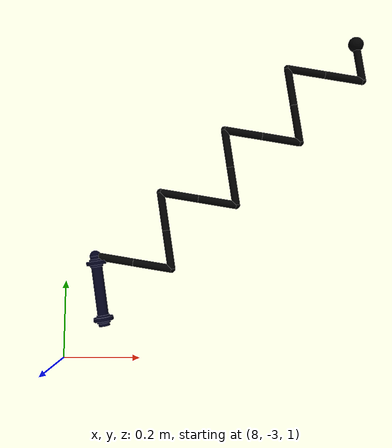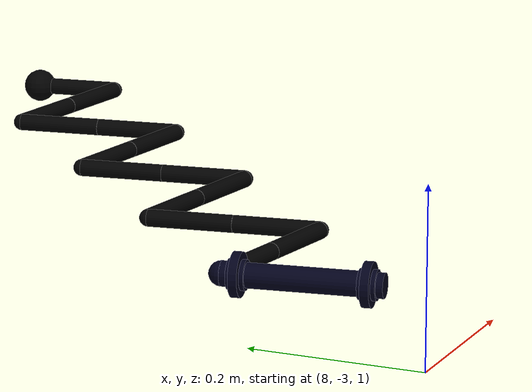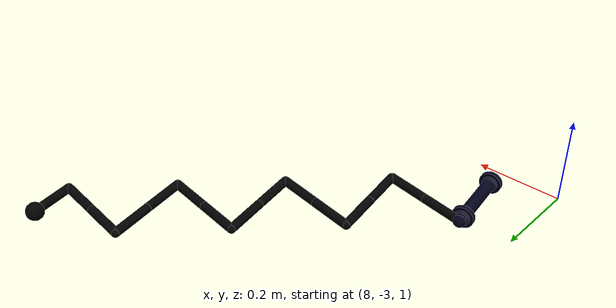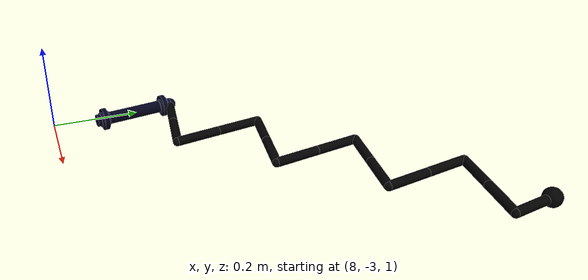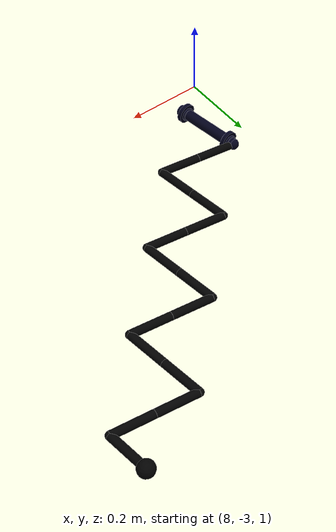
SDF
<sdf version="1.6">
 <world name="SRC_finals">
  <physics type="ode">
   <real_time_update_rate>1000.0</real_time_update_rate>
   <max_step_size>0.001</max_step_size>
   <real_time_factor>1</real_time_factor>
   <ode>
    <solver>
     <type>quick</type>
     <iters>150</iters>
     <precon_iters>0</precon_iters>
     <sor>1.400000</sor>
     <use_dynamic_moi_rescaling>1</use_dynamic_moi_rescaling>
    </solver>
    <constraints>
     <cfm>0.000000</cfm>
     <erp>0.800000</erp>
     <contact_max_correcting_vel>2000.000000</contact_max_correcting_vel>
     <contact_surface_layer>0.01000</contact_surface_layer>
    </constraints>
   </ode>
  </physics>
  <scene>
   <background>0.968627451 0.690196078 0.384313725 1.0</background>
   <grid>0</grid>
   <origin_visual>0</origin_visual>
  </scene>
  <light type="directional" name="sun">
   <pose>0 0 1000 0.7848577238240322 -0.8504814901469435 0</pose>
   <diffuse>0.8 0.8 0.8 1</diffuse>
   <specular>0.2 0.2 0.2 1</specular>
   <attenuation>
    <range>1000</range>
    <constant>0.9</constant>
    <linear>0.01</linear>
    <quadratic>0.001</quadratic>
   </attenuation>
   <direction>-0.5 0.1 -0.9</direction>
  </light>
  <plugin name="boxT2Start" filename="libBoxContainsPlugin.so">
   <entity>talos</entity>
   <namespace>task2/start</namespace>
   <pose>2.114
        -2.784846821261081e-16
        2.5
        0
        0
        -1.5707963267948968</pose>
   <size>1.524 1 5.0</size>
  </plugin>
  <model name="solar_panel_cable">
   <self_collide>true</self_collide>
   <pose>8.76796577211618
    -2.1645357042577604
    1.05
    0
    0
    -2.356194490192345</pose>
   <link name="link_0">
    <inertial><mass>0.05</mass><inertia><ixx>0.0001</ixx><iyy>0.0001</iyy><izz>0.0001</izz></inertia></inertial>
    <visual name="visual">
     <geometry><sphere><radius>0.02</radius></sphere></geometry>
     <material>
      <ambient>0 0 0 1</ambient>
      <emissive>0 0 0 1</emissive>
      <diffuse>0 0 0 1</diffuse>
      <specular>1 1 1 1</specular>
     </material>
    </visual>
   </link>
   <link name="link_1">
    <pose>0.0 0 0 0 1.5707963267948966 0.9424777960769379</pose>
    <inertial>
     <pose>0 0 0.05 0 0 0</pose>
     <mass>0.05</mass>
     <inertia><ixx>0.0001</ixx><iyy>0.0001</iyy><izz>0.0001</izz></inertia>
    </inertial>
    <collision name="cylinder">
     <pose>0 0 0.05 0 0 0</pose>
     <geometry><cylinder><length>0.1</length><radius>0.01</radius></cylinder></geometry>
     <surface>
      <contact><ode><kp>1e5</kp><kd>1</kd><max_vel>0.1</max_vel><min_depth>0.0015</min_depth></ode></contact>
      <friction><ode><mu>1.0</mu><mu2>1.0</mu2></ode></friction>
     </surface>
    </collision>
    <visual name="cylinder">
     <pose>0 0 0.05 0 0 0</pose>
     <geometry><cylinder><length>0.1</length><radius>0.01</radius></cylinder></geometry>
     <material>
      <ambient>0 0 0 1</ambient>
      <emissive>0 0 0 1</emissive>
      <diffuse>0 0 0 1</diffuse>
      <specular>1 1 1 1</specular>
     </material>
    </visual>
    <collision name="sphere">
     <geometry><sphere><radius>0.01</radius></sphere></geometry>
     <surface>
      <contact><ode><kp>1e5</kp><kd>1</kd><max_vel>0.1</max_vel><min_depth>0.0015</min_depth></ode></contact>
      <friction><ode><mu>1.0</mu><mu2>1.0</mu2></ode></friction>
     </surface>
    </collision>
    <visual name="sphere">
     <geometry><sphere><radius>0.01</radius></sphere></geometry>
     <material>
      <ambient>0 0 0 1</ambient>
      <emissive>0 0 0 1</emissive>
      <diffuse>0 0 0 1</diffuse>
      <specular>1 1 1 1</specular>
     </material>
    </visual>
   </link>
   <joint name="joint_1" type="universal">
    <child>link_1</child>
    <parent>link_0</parent>
    <axis>
     <xyz>0 1 0</xyz>
     <limit><lower>-1.5707963267948966</lower><upper>1.5707963267948966</upper></limit>
    </axis>
    <axis2>
     <xyz>-1 0 0</xyz>
     <limit><lower>-1.5707963267948966</lower><upper>1.5707963267948966</upper></limit>
    </axis2>
    <physics><ode><cfm_damping>1</cfm_damping></ode></physics>
   </joint>
   <link name="link_2">
    <pose>0.058778525229247314 0.08090169943749476 0 0 1.5707963267948966 -0.9424777960769379</pose>
    <inertial>
     <pose>0 0 0.05 0 0 0</pose>
     <mass>0.05</mass>
     <inertia><ixx>0.0001</ixx><iyy>0.0001</iyy><izz>0.0001</izz></inertia>
    </inertial>
    <collision name="cylinder">
     <pose>0 0 0.05 0 0 0</pose>
     <geometry><cylinder><length>0.1</length><radius>0.01</radius></cylinder></geometry>
     <surface>
      <contact><ode><kp>1e5</kp><kd>1</kd><max_vel>0.1</max_vel><min_depth>0.0015</min_depth></ode></contact>
      <friction><ode><mu>1.0</mu><mu2>1.0</mu2></ode></friction>
     </surface>
    </collision>
    <visual name="cylinder">
     <pose>0 0 0.05 0 0 0</pose>
     <geometry><cylinder><length>0.1</length><radius>0.01</radius></cylinder></geometry>
     <material>
      <ambient>0 0 0 1</ambient>
      <emissive>0 0 0 1</emissive>
      <diffuse>0 0 0 1</diffuse>
      <specular>1 1 1 1</specular>
     </material>
    </visual>
    <collision name="sphere">
     <geometry><sphere><radius>0.01</radius></sphere></geometry>
     <surface>
      <contact><ode><kp>1e5</kp><kd>1</kd><max_vel>0.1</max_vel><min_depth>0.0015</min_depth></ode></contact>
      <friction><ode><mu>1.0</mu><mu2>1.0</mu2></ode></friction>
     </surface>
    </collision>
    <visual name="sphere">
     <geometry><sphere><radius>0.01</radius></sphere></geometry>
     <material>
      <ambient>0 0 0 1</ambient>
      <emissive>0 0 0 1</emissive>
      <diffuse>0 0 0 1</diffuse>
      <specular>1 1 1 1</specular>
     </material>
    </visual>
   </link>
   <joint name="joint_2" type="universal">
    <child>link_2</child>
    <parent>link_1</parent>
    <axis>
     <xyz>0 1 0</xyz>
     <limit><lower>-1.5707963267948966</lower><upper>1.5707963267948966</upper></limit>
    </axis>
    <axis2>
     <xyz>-1 0 0</xyz>
     <limit><lower>-1.5707963267948966</lower><upper>1.5707963267948966</upper></limit>
    </axis2>
    <physics><ode><cfm_damping>1</cfm_damping></ode></physics>
   </joint>
   <link name="link_3">
    <pose>0.11755705045849463 0 0 0 1.5707963267948966 -0.9424777960769379</pose>
    <inertial>
     <pose>0 0 0.05 0 0 0</pose>
     <mass>0.05</mass>
     <inertia><ixx>0.0001</ixx><iyy>0.0001</iyy><izz>0.0001</izz></inertia>
    </inertial>
    <collision name="cylinder">
     <pose>0 0 0.05 0 0 0</pose>
     <geometry><cylinder><length>0.1</length><radius>0.01</radius></cylinder></geometry>
     <surface>
      <contact><ode><kp>1e5</kp><kd>1</kd><max_vel>0.1</max_vel><min_depth>0.0015</min_depth></ode></contact>
      <friction><ode><mu>1.0</mu><mu2>1.0</mu2></ode></friction>
     </surface>
    </collision>
    <visual name="cylinder">
     <pose>0 0 0.05 0 0 0</pose>
     <geometry><cylinder><length>0.1</length><radius>0.01</radius></cylinder></geometry>
     <material>
      <ambient>0 0 0 1</ambient>
      <emissive>0 0 0 1</emissive>
      <diffuse>0 0 0 1</diffuse>
      <specular>1 1 1 1</specular>
     </material>
    </visual>
    <collision name="sphere">
     <geometry><sphere><radius>0.01</radius></sphere></geometry>
     <surface>
      <contact><ode><kp>1e5</kp><kd>1</kd><max_vel>0.1</max_vel><min_depth>0.0015</min_depth></ode></contact>
      <friction><ode><mu>1.0</mu><mu2>1.0</mu2></ode></friction>
     </surface>
    </collision>
    <visual name="sphere">
     <geometry><sphere><radius>0.01</radius></sphere></geometry>
     <material>
      <ambient>0 0 0 1</ambient>
      <emissive>0 0 0 1</emissive>
      <diffuse>0 0 0 1</diffuse>
      <specular>1 1 1 1</specular>
     </material>
    </visual>
   </link>
   <joint name="joint_3" type="universal">
    <child>link_3</child>
    <parent>link_2</parent>
    <axis>
     <xyz>0 1 0</xyz>
     <limit><lower>-1.5707963267948966</lower><upper>1.5707963267948966</upper></limit>
    </axis>
    <axis2>
     <xyz>-1 0 0</xyz>
     <limit><lower>-1.5707963267948966</lower><upper>1.5707963267948966</upper></limit>
    </axis2>
    <physics><ode><cfm_damping>1</cfm_damping></ode></physics>
   </joint>
   <link name="link_4">
    <pose>0.17633557568774197 -0.08090169943749476 0 0 1.5707963267948966 0.9424777960769379</pose>
    <inertial>
     <pose>0 0 0.05 0 0 0</pose>
     <mass>0.05</mass>
     <inertia><ixx>0.0001</ixx><iyy>0.0001</iyy><izz>0.0001</izz></inertia>
    </inertial>
    <collision name="cylinder">
     <pose>0 0 0.05 0 0 0</pose>
     <geometry><cylinder><length>0.1</length><radius>0.01</radius></cylinder></geometry>
     <surface>
      <contact><ode><kp>1e5</kp><kd>1</kd><max_vel>0.1</max_vel><min_depth>0.0015</min_depth></ode></contact>
      <friction><ode><mu>1.0</mu><mu2>1.0</mu2></ode></friction>
     </surface>
    </collision>
    <visual name="cylinder">
     <pose>0 0 0.05 0 0 0</pose>
     <geometry><cylinder><length>0.1</length><radius>0.01</radius></cylinder></geometry>
     <material>
      <ambient>0 0 0 1</ambient>
      <emissive>0 0 0 1</emissive>
      <diffuse>0 0 0 1</diffuse>
      <specular>1 1 1 1</specular>
     </material>
    </visual>
    <collision name="sphere">
     <geometry><sphere><radius>0.01</radius></sphere></geometry>
     <surface>
      <contact><ode><kp>1e5</kp><kd>1</kd><max_vel>0.1</max_vel><min_depth>0.0015</min_depth></ode></contact>
      <friction><ode><mu>1.0</mu><mu2>1.0</mu2></ode></friction>
     </surface>
    </collision>
    <visual name="sphere">
     <geometry><sphere><radius>0.01</radius></sphere></geometry>
     <material>
      <ambient>0 0 0 1</ambient>
      <emissive>0 0 0 1</emissive>
      <diffuse>0 0 0 1</diffuse>
      <specular>1 1 1 1</specular>
     </material>
    </visual>
   </link>
   <joint name="joint_4" type="universal">
    <child>link_4</child>
    <parent>link_3</parent>
    <axis>
     <xyz>0 1 0</xyz>
     <limit><lower>-1.5707963267948966</lower><upper>1.5707963267948966</upper></limit>
    </axis>
    <axis2>
     <xyz>-1 0 0</xyz>
     <limit><lower>-1.5707963267948966</lower><upper>1.5707963267948966</upper></limit>
    </axis2>
    <physics><ode><cfm_damping>1</cfm_damping></ode></physics>
   </joint>
   <link name="link_5">
    <pose>0.23511410091698925 0 0 0 1.5707963267948966 0.9424777960769379</pose>
    <inertial>
     <pose>0 0 0.05 0 0 0</pose>
     <mass>0.05</mass>
     <inertia><ixx>0.0001</ixx><iyy>0.0001</iyy><izz>0.0001</izz></inertia>
    </inertial>
    <collision name="cylinder">
     <pose>0 0 0.05 0 0 0</pose>
     <geometry><cylinder><length>0.1</length><radius>0.01</radius></cylinder></geometry>
     <surface>
      <contact><ode><kp>1e5</kp><kd>1</kd><max_vel>0.1</max_vel><min_depth>0.0015</min_depth></ode></contact>
      <friction><ode><mu>1.0</mu><mu2>1.0</mu2></ode></friction>
     </surface>
    </collision>
    <visual name="cylinder">
     <pose>0 0 0.05 0 0 0</pose>
     <geometry><cylinder><length>0.1</length><radius>0.01</radius></cylinder></geometry>
     <material>
      <ambient>0 0 0 1</ambient>
      <emissive>0 0 0 1</emissive>
      <diffuse>0 0 0 1</diffuse>
      <specular>1 1 1 1</specular>
     </material>
    </visual>
    <collision name="sphere">
     <geometry><sphere><radius>0.01</radius></sphere></geometry>
     <surface>
      <contact><ode><kp>1e5</kp><kd>1</kd><max_vel>0.1</max_vel><min_depth>0.0015</min_depth></ode></contact>
      <friction><ode><mu>1.0</mu><mu2>1.0</mu2></ode></friction>
     </surface>
    </collision>
    <visual name="sphere">
     <geometry><sphere><radius>0.01</radius></sphere></geometry>
     <material>
      <ambient>0 0 0 1</ambient>
      <emissive>0 0 0 1</emissive>
      <diffuse>0 0 0 1</diffuse>
      <specular>1 1 1 1</specular>
     </material>
    </visual>
   </link>
   <joint name="joint_5" type="universal">
    <child>link_5</child>
    <parent>link_4</parent>
    <axis>
     <xyz>0 1 0</xyz>
     <limit><lower>-1.5707963267948966</lower><upper>1.5707963267948966</upper></limit>
    </axis>
    <axis2>
     <xyz>-1 0 0</xyz>
     <limit><lower>-1.5707963267948966</lower><upper>1.5707963267948966</upper></limit>
    </axis2>
    <physics><ode><cfm_damping>1</cfm_damping></ode></physics>
   </joint>
   <link name="link_6">
    <pose>0.29389262614623657 0.08090169943749476 0 0 1.5707963267948966 -0.9424777960769379</pose>
    <inertial>
     <pose>0 0 0.05 0 0 0</pose>
     <mass>0.05</mass>
     <inertia><ixx>0.0001</ixx><iyy>0.0001</iyy><izz>0.0001</izz></inertia>
    </inertial>
    <collision name="cylinder">
     <pose>0 0 0.05 0 0 0</pose>
     <geometry><cylinder><length>0.1</length><radius>0.01</radius></cylinder></geometry>
     <surface>
      <contact><ode><kp>1e5</kp><kd>1</kd><max_vel>0.1</max_vel><min_depth>0.0015</min_depth></ode></contact>
      <friction><ode><mu>1.0</mu><mu2>1.0</mu2></ode></friction>
     </surface>
    </collision>
    <visual name="cylinder">
     <pose>0 0 0.05 0 0 0</pose>
     <geometry><cylinder><length>0.1</length><radius>0.01</radius></cylinder></geometry>
     <material>
      <ambient>0 0 0 1</ambient>
      <emissive>0 0 0 1</emissive>
      <diffuse>0 0 0 1</diffuse>
      <specular>1 1 1 1</specular>
     </material>
    </visual>
    <collision name="sphere">
     <geometry><sphere><radius>0.01</radius></sphere></geometry>
     <surface>
      <contact><ode><kp>1e5</kp><kd>1</kd><max_vel>0.1</max_vel><min_depth>0.0015</min_depth></ode></contact>
      <friction><ode><mu>1.0</mu><mu2>1.0</mu2></ode></friction>
     </surface>
    </collision>
    <visual name="sphere">
     <geometry><sphere><radius>0.01</radius></sphere></geometry>
     <material>
      <ambient>0 0 0 1</ambient>
      <emissive>0 0 0 1</emissive>
      <diffuse>0 0 0 1</diffuse>
      <specular>1 1 1 1</specular>
     </material>
    </visual>
   </link>
   <joint name="joint_6" type="universal">
    <child>link_6</child>
    <parent>link_5</parent>
    <axis>
     <xyz>0 1 0</xyz>
     <limit><lower>-1.5707963267948966</lower><upper>1.5707963267948966</upper></limit>
    </axis>
    <axis2>
     <xyz>-1 0 0</xyz>
     <limit><lower>-1.5707963267948966</lower><upper>1.5707963267948966</upper></limit>
    </axis2>
    <physics><ode><cfm_damping>1</cfm_damping></ode></physics>
   </joint>
   <link name="link_7">
    <pose>0.35267115137548394 0 0 0 1.5707963267948966 -0.9424777960769379</pose>
    <inertial>
     <pose>0 0 0.05 0 0 0</pose>
     <mass>0.05</mass>
     <inertia><ixx>0.0001</ixx><iyy>0.0001</iyy><izz>0.0001</izz></inertia>
    </inertial>
    <collision name="cylinder">
     <pose>0 0 0.05 0 0 0</pose>
     <geometry><cylinder><length>0.1</length><radius>0.01</radius></cylinder></geometry>
     <surface>
      <contact><ode><kp>1e5</kp><kd>1</kd><max_vel>0.1</max_vel><min_depth>0.0015</min_depth></ode></contact>
      <friction><ode><mu>1.0</mu><mu2>1.0</mu2></ode></friction>
     </surface>
    </collision>
    <visual name="cylinder">
     <pose>0 0 0.05 0 0 0</pose>
     <geometry><cylinder><length>0.1</length><radius>0.01</radius></cylinder></geometry>
     <material>
      <ambient>0 0 0 1</ambient>
      <emissive>0 0 0 1</emissive>
      <diffuse>0 0 0 1</diffuse>
      <specular>1 1 1 1</specular>
     </material>
    </visual>
    <collision name="sphere">
     <geometry><sphere><radius>0.01</radius></sphere></geometry>
     <surface>
      <contact><ode><kp>1e5</kp><kd>1</kd><max_vel>0.1</max_vel><min_depth>0.0015</min_depth></ode></contact>
      <friction><ode><mu>1.0</mu><mu2>1.0</mu2></ode></friction>
     </surface>
    </collision>
    <visual name="sphere">
     <geometry><sphere><radius>0.01</radius></sphere></geometry>
     <material>
      <ambient>0 0 0 1</ambient>
      <emissive>0 0 0 1</emissive>
      <diffuse>0 0 0 1</diffuse>
      <specular>1 1 1 1</specular>
     </material>
    </visual>
   </link>
   <joint name="joint_7" type="universal">
    <child>link_7</child>
    <parent>link_6</parent>
    <axis>
     <xyz>0 1 0</xyz>
     <limit><lower>-1.5707963267948966</lower><upper>1.5707963267948966</upper></limit>
    </axis>
    <axis2>
     <xyz>-1 0 0</xyz>
     <limit><lower>-1.5707963267948966</lower><upper>1.5707963267948966</upper></limit>
    </axis2>
    <physics><ode><cfm_damping>1</cfm_damping></ode></physics>
   </joint>
   <link name="link_8">
    <pose>0.41144967660473125 -0.08090169943749476 0 0 1.5707963267948966 0.9424777960769379</pose>
    <inertial>
     <pose>0 0 0.05 0 0 0</pose>
     <mass>0.05</mass>
     <inertia><ixx>0.0001</ixx><iyy>0.0001</iyy><izz>0.0001</izz></inertia>
    </inertial>
    <collision name="cylinder">
     <pose>0 0 0.05 0 0 0</pose>
     <geometry><cylinder><length>0.1</length><radius>0.01</radius></cylinder></geometry>
     <surface>
      <contact><ode><kp>1e5</kp><kd>1</kd><max_vel>0.1</max_vel><min_depth>0.0015</min_depth></ode></contact>
      <friction><ode><mu>1.0</mu><mu2>1.0</mu2></ode></friction>
     </surface>
    </collision>
    <visual name="cylinder">
     <pose>0 0 0.05 0 0 0</pose>
     <geometry><cylinder><length>0.1</length><radius>0.01</radius></cylinder></geometry>
     <material>
      <ambient>0 0 0 1</ambient>
      <emissive>0 0 0 1</emissive>
      <diffuse>0 0 0 1</diffuse>
      <specular>1 1 1 1</specular>
     </material>
    </visual>
    <collision name="sphere">
     <geometry><sphere><radius>0.01</radius></sphere></geometry>
     <surface>
      <contact><ode><kp>1e5</kp><kd>1</kd><max_vel>0.1</max_vel><min_depth>0.0015</min_depth></ode></contact>
      <friction><ode><mu>1.0</mu><mu2>1.0</mu2></ode></friction>
     </surface>
    </collision>
    <visual name="sphere">
     <geometry><sphere><radius>0.01</radius></sphere></geometry>
     <material>
      <ambient>0 0 0 1</ambient>
      <emissive>0 0 0 1</emissive>
      <diffuse>0 0 0 1</diffuse>
      <specular>1 1 1 1</specular>
     </material>
    </visual>
   </link>
   <joint name="joint_8" type="universal">
    <child>link_8</child>
    <parent>link_7</parent>
    <axis>
     <xyz>0 1 0</xyz>
     <limit><lower>-1.5707963267948966</lower><upper>1.5707963267948966</upper></limit>
    </axis>
    <axis2>
     <xyz>-1 0 0</xyz>
     <limit><lower>-1.5707963267948966</lower><upper>1.5707963267948966</upper></limit>
    </axis2>
    <physics><ode><cfm_damping>1</cfm_damping></ode></physics>
   </joint>
   <link name="link_9">
    <pose>0.4702282018339785 0 0 0 1.5707963267948966 0.9424777960769379</pose>
    <inertial>
     <pose>0 0 0.05 0 0 0</pose>
     <mass>0.05</mass>
     <inertia><ixx>0.0001</ixx><iyy>0.0001</iyy><izz>0.0001</izz></inertia>
    </inertial>
    <collision name="cylinder">
     <pose>0 0 0.05 0 0 0</pose>
     <geometry><cylinder><length>0.1</length><radius>0.01</radius></cylinder></geometry>
     <surface>
      <contact><ode><kp>1e5</kp><kd>1</kd><max_vel>0.1</max_vel><min_depth>0.0015</min_depth></ode></contact>
      <friction><ode><mu>1.0</mu><mu2>1.0</mu2></ode></friction>
     </surface>
    </collision>
    <visual name="cylinder">
     <pose>0 0 0.05 0 0 0</pose>
     <geometry><cylinder><length>0.1</length><radius>0.01</radius></cylinder></geometry>
     <material>
      <ambient>0 0 0 1</ambient>
      <emissive>0 0 0 1</emissive>
      <diffuse>0 0 0 1</diffuse>
      <specular>1 1 1 1</specular>
     </material>
    </visual>
    <collision name="sphere">
     <geometry><sphere><radius>0.01</radius></sphere></geometry>
     <surface>
      <contact><ode><kp>1e5</kp><kd>1</kd><max_vel>0.1</max_vel><min_depth>0.0015</min_depth></ode></contact>
      <friction><ode><mu>1.0</mu><mu2>1.0</mu2></ode></friction>
     </surface>
    </collision>
    <visual name="sphere">
     <geometry><sphere><radius>0.01</radius></sphere></geometry>
     <material>
      <ambient>0 0 0 1</ambient>
      <emissive>0 0 0 1</emissive>
      <diffuse>0 0 0 1</diffuse>
      <specular>1 1 1 1</specular>
     </material>
    </visual>
   </link>
   <joint name="joint_9" type="universal">
    <child>link_9</child>
    <parent>link_8</parent>
    <axis>
     <xyz>0 1 0</xyz>
     <limit><lower>-1.5707963267948966</lower><upper>1.5707963267948966</upper></limit>
    </axis>
    <axis2>
     <xyz>-1 0 0</xyz>
     <limit><lower>-1.5707963267948966</lower><upper>1.5707963267948966</upper></limit>
    </axis2>
    <physics><ode><cfm_damping>1</cfm_damping></ode></physics>
   </joint>
   <link name="link_10">
    <pose>0.5290067270632258 0.08090169943749476 0 0 1.5707963267948966 -0.9424777960769379</pose>
    <inertial>
     <pose>0 0 0.05 0 0 0</pose>
     <mass>0.05</mass>
     <inertia><ixx>0.0001</ixx><iyy>0.0001</iyy><izz>0.0001</izz></inertia>
    </inertial>
    <collision name="cylinder">
     <pose>0 0 0.05 0 0 0</pose>
     <geometry><cylinder><length>0.1</length><radius>0.01</radius></cylinder></geometry>
     <surface>
      <contact><ode><kp>1e5</kp><kd>1</kd><max_vel>0.1</max_vel><min_depth>0.0015</min_depth></ode></contact>
      <friction><ode><mu>1.0</mu><mu2>1.0</mu2></ode></friction>
     </surface>
    </collision>
    <visual name="cylinder">
     <pose>0 0 0.05 0 0 0</pose>
     <geometry><cylinder><length>0.1</length><radius>0.01</radius></cylinder></geometry>
     <material>
      <ambient>0 0 0 1</ambient>
      <emissive>0 0 0 1</emissive>
      <diffuse>0 0 0 1</diffuse>
      <specular>1 1 1 1</specular>
     </material>
    </visual>
    <collision name="sphere">
     <geometry><sphere><radius>0.01</radius></sphere></geometry>
     <surface>
      <contact><ode><kp>1e5</kp><kd>1</kd><max_vel>0.1</max_vel><min_depth>0.0015</min_depth></ode></contact>
      <friction><ode><mu>1.0</mu><mu2>1.0</mu2></ode></friction>
     </surface>
    </collision>
    <visual name="sphere">
     <geometry><sphere><radius>0.01</radius></sphere></geometry>
     <material>
      <ambient>0 0 0 1</ambient>
      <emissive>0 0 0 1</emissive>
      <diffuse>0 0 0 1</diffuse>
      <specular>1 1 1 1</specular>
     </material>
    </visual>
   </link>
   <joint name="joint_10" type="universal">
    <child>link_10</child>
    <parent>link_9</parent>
    <axis>
     <xyz>0 1 0</xyz>
     <limit><lower>-1.5707963267948966</lower><upper>1.5707963267948966</upper></limit>
    </axis>
    <axis2>
     <xyz>-1 0 0</xyz>
     <limit><lower>-1.5707963267948966</lower><upper>1.5707963267948966</upper></limit>
    </axis2>
    <physics><ode><cfm_damping>1</cfm_damping></ode></physics>
   </joint>
   <link name="link_11">
    <pose>0.5877852522924731 0 0 0 1.5707963267948966 -0.9424777960769379</pose>
    <inertial>
     <pose>0 0 0.05 0 0 0</pose>
     <mass>0.05</mass>
     <inertia><ixx>0.0001</ixx><iyy>0.0001</iyy><izz>0.0001</izz></inertia>
    </inertial>
    <collision name="cylinder">
     <pose>0 0 0.05 0 0 0</pose>
     <geometry><cylinder><length>0.1</length><radius>0.01</radius></cylinder></geometry>
     <surface>
      <contact><ode><kp>1e5</kp><kd>1</kd><max_vel>0.1</max_vel><min_depth>0.0015</min_depth></ode></contact>
      <friction><ode><mu>1.0</mu><mu2>1.0</mu2></ode></friction>
     </surface>
    </collision>
    <visual name="cylinder">
     <pose>0 0 0.05 0 0 0</pose>
     <geometry><cylinder><length>0.1</length><radius>0.01</radius></cylinder></geometry>
     <material>
      <ambient>0 0 0 1</ambient>
      <emissive>0 0 0 1</emissive>
      <diffuse>0 0 0 1</diffuse>
      <specular>1 1 1 1</specular>
     </material>
    </visual>
    <collision name="sphere">
     <geometry><sphere><radius>0.01</radius></sphere></geometry>
     <surface>
      <contact><ode><kp>1e5</kp><kd>1</kd><max_vel>0.1</max_vel><min_depth>0.0015</min_depth></ode></contact>
      <friction><ode><mu>1.0</mu><mu2>1.0</mu2></ode></friction>
     </surface>
    </collision>
    <visual name="sphere">
     <geometry><sphere><radius>0.01</radius></sphere></geometry>
     <material>
      <ambient>0 0 0 1</ambient>
      <emissive>0 0 0 1</emissive>
      <diffuse>0 0 0 1</diffuse>
      <specular>1 1 1 1</specular>
     </material>
    </visual>
   </link>
   <joint name="joint_11" type="universal">
    <child>link_11</child>
    <parent>link_10</parent>
    <axis>
     <xyz>0 1 0</xyz>
     <limit><lower>-1.5707963267948966</lower><upper>1.5707963267948966</upper></limit>
    </axis>
    <axis2>
     <xyz>-1 0 0</xyz>
     <limit><lower>-1.5707963267948966</lower><upper>1.5707963267948966</upper></limit>
    </axis2>
    <physics><ode><cfm_damping>1</cfm_damping></ode></physics>
   </joint>
   <link name="link_12">
    <pose>0.6465637775217205 -0.08090169943749476 0 0 1.5707963267948966 0.9424777960769379</pose>
    <inertial>
     <pose>0 0 0.05 0 0 0</pose>
     <mass>0.05</mass>
     <inertia><ixx>0.0001</ixx><iyy>0.0001</iyy><izz>0.0001</izz></inertia>
    </inertial>
    <collision name="cylinder">
     <pose>0 0 0.05 0 0 0</pose>
     <geometry><cylinder><length>0.1</length><radius>0.01</radius></cylinder></geometry>
     <surface>
      <contact><ode><kp>1e5</kp><kd>1</kd><max_vel>0.1</max_vel><min_depth>0.0015</min_depth></ode></contact>
      <friction><ode><mu>1.0</mu><mu2>1.0</mu2></ode></friction>
     </surface>
    </collision>
    <visual name="cylinder">
     <pose>0 0 0.05 0 0 0</pose>
     <geometry><cylinder><length>0.1</length><radius>0.01</radius></cylinder></geometry>
     <material>
      <ambient>0 0 0 1</ambient>
      <emissive>0 0 0 1</emissive>
      <diffuse>0 0 0 1</diffuse>
      <specular>1 1 1 1</specular>
     </material>
    </visual>
    <collision name="sphere">
     <geometry><sphere><radius>0.01</radius></sphere></geometry>
     <surface>
      <contact><ode><kp>1e5</kp><kd>1</kd><max_vel>0.1</max_vel><min_depth>0.0015</min_depth></ode></contact>
      <friction><ode><mu>1.0</mu><mu2>1.0</mu2></ode></friction>
     </surface>
    </collision>
    <visual name="sphere">
     <geometry><sphere><radius>0.01</radius></sphere></geometry>
     <material>
      <ambient>0 0 0 1</ambient>
      <emissive>0 0 0 1</emissive>
      <diffuse>0 0 0 1</diffuse>
      <specular>1 1 1 1</specular>
     </material>
    </visual>
   </link>
   <joint name="joint_12" type="universal">
    <child>link_12</child>
    <parent>link_11</parent>
    <axis>
     <xyz>0 1 0</xyz>
     <limit><lower>-1.5707963267948966</lower><upper>1.5707963267948966</upper></limit>
    </axis>
    <axis2>
     <xyz>-1 0 0</xyz>
     <limit><lower>-1.5707963267948966</lower><upper>1.5707963267948966</upper></limit>
    </axis2>
    <physics><ode><cfm_damping>1</cfm_damping></ode></physics>
   </joint>
   <link name="link_13">
    <pose>0.7053423027509679 0 0 0 1.5707963267948966 0.9424777960769379</pose>
    <inertial>
     <pose>0 0 0.05 0 0 0</pose>
     <mass>0.05</mass>
     <inertia><ixx>0.0001</ixx><iyy>0.0001</iyy><izz>0.0001</izz></inertia>
    </inertial>
    <collision name="cylinder">
     <pose>0 0 0.05 0 0 0</pose>
     <geometry><cylinder><length>0.1</length><radius>0.01</radius></cylinder></geometry>
     <surface>
      <contact><ode><kp>1e5</kp><kd>1</kd><max_vel>0.1</max_vel><min_depth>0.0015</min_depth></ode></contact>
      <friction><ode><mu>1.0</mu><mu2>1.0</mu2></ode></friction>
     </surface>
    </collision>
    <visual name="cylinder">
     <pose>0 0 0.05 0 0 0</pose>
     <geometry><cylinder><length>0.1</length><radius>0.01</radius></cylinder></geometry>
     <material>
      <ambient>0 0 0 1</ambient>
      <emissive>0 0 0 1</emissive>
      <diffuse>0 0 0 1</diffuse>
      <specular>1 1 1 1</specular>
     </material>
    </visual>
    <collision name="sphere">
     <geometry><sphere><radius>0.01</radius></sphere></geometry>
     <surface>
      <contact><ode><kp>1e5</kp><kd>1</kd><max_vel>0.1</max_vel><min_depth>0.0015</min_depth></ode></contact>
      <friction><ode><mu>1.0</mu><mu2>1.0</mu2></ode></friction>
     </surface>
    </collision>
    <visual name="sphere">
     <geometry><sphere><radius>0.01</radius></sphere></geometry>
     <material>
      <ambient>0 0 0 1</ambient>
      <emissive>0 0 0 1</emissive>
      <diffuse>0 0 0 1</diffuse>
      <specular>1 1 1 1</specular>
     </material>
    </visual>
   </link>
   <joint name="joint_13" type="universal">
    <child>link_13</child>
    <parent>link_12</parent>
    <axis>
     <xyz>0 1 0</xyz>
     <limit><lower>-1.5707963267948966</lower><upper>1.5707963267948966</upper></limit>
    </axis>
    <axis2>
     <xyz>-1 0 0</xyz>
     <limit><lower>-1.5707963267948966</lower><upper>1.5707963267948966</upper></limit>
    </axis2>
    <physics><ode><cfm_damping>1</cfm_damping></ode></physics>
   </joint>
   <link name="link_14">
    <pose>0.7641208279802151 0.08090169943749476 0 0 1.5707963267948966 -0.9424777960769379</pose>
    <inertial>
     <pose>0 0 0.05 0 0 0</pose>
     <mass>0.05</mass>
     <inertia><ixx>0.0001</ixx><iyy>0.0001</iyy><izz>0.0001</izz></inertia>
    </inertial>
    <collision name="cylinder">
     <pose>0 0 0.05 0 0 0</pose>
     <geometry><cylinder><length>0.1</length><radius>0.01</radius></cylinder></geometry>
     <surface>
      <contact><ode><kp>1e5</kp><kd>1</kd><max_vel>0.1</max_vel><min_depth>0.0015</min_depth></ode></contact>
      <friction><ode><mu>1.0</mu><mu2>1.0</mu2></ode></friction>
     </surface>
    </collision>
    <visual name="cylinder">
     <pose>0 0 0.05 0 0 0</pose>
     <geometry><cylinder><length>0.1</length><radius>0.01</radius></cylinder></geometry>
     <material>
      <ambient>0 0 0 1</ambient>
      <emissive>0 0 0 1</emissive>
      <diffuse>0 0 0 1</diffuse>
      <specular>1 1 1 1</specular>
     </material>
    </visual>
    <collision name="sphere">
     <geometry><sphere><radius>0.01</radius></sphere></geometry>
     <surface>
      <contact><ode><kp>1e5</kp><kd>1</kd><max_vel>0.1</max_vel><min_depth>0.0015</min_depth></ode></contact>
      <friction><ode><mu>1.0</mu><mu2>1.0</mu2></ode></friction>
     </surface>
    </collision>
    <visual name="sphere">
     <geometry><sphere><radius>0.01</radius></sphere></geometry>
     <material>
      <ambient>0 0 0 1</ambient>
      <emissive>0 0 0 1</emissive>
      <diffuse>0 0 0 1</diffuse>
      <specular>1 1 1 1</specular>
     </material>
    </visual>
   </link>
   <joint name="joint_14" type="universal">
    <child>link_14</child>
    <parent>link_13</parent>
    <axis>
     <xyz>0 1 0</xyz>
     <limit><lower>-1.5707963267948966</lower><upper>1.5707963267948966</upper></limit>
    </axis>
    <axis2>
     <xyz>-1 0 0</xyz>
     <limit><lower>-1.5707963267948966</lower><upper>1.5707963267948966</upper></limit>
    </axis2>
    <physics><ode><cfm_damping>1</cfm_damping></ode></physics>
   </joint>
   <link name="link_15">
    <pose>0.8228993532094625 0 0 0 1.5707963267948966 -0.9424777960769379</pose>
    <inertial>
     <pose>0 0 0.05 0 0 0</pose>
     <mass>0.05</mass>
     <inertia><ixx>0.0001</ixx><iyy>0.0001</iyy><izz>0.0001</izz></inertia>
    </inertial>
    <collision name="cylinder">
     <pose>0 0 0.05 0 0 0</pose>
     <geometry><cylinder><length>0.1</length><radius>0.01</radius></cylinder></geometry>
     <surface>
      <contact><ode><kp>1e5</kp><kd>1</kd><max_vel>0.1</max_vel><min_depth>0.0015</min_depth></ode></contact>
      <friction><ode><mu>1.0</mu><mu2>1.0</mu2></ode></friction>
     </surface>
    </collision>
    <visual name="cylinder">
     <pose>0 0 0.05 0 0 0</pose>
     <geometry><cylinder><length>0.1</length><radius>0.01</radius></cylinder></geometry>
     <material>
      <ambient>0 0 0 1</ambient>
      <emissive>0 0 0 1</emissive>
      <diffuse>0 0 0 1</diffuse>
      <specular>1 1 1 1</specular>
     </material>
    </visual>
    <collision name="sphere">
     <geometry><sphere><radius>0.01</radius></sphere></geometry>
     <surface>
      <contact><ode><kp>1e5</kp><kd>1</kd><max_vel>0.1</max_vel><min_depth>0.0015</min_depth></ode></contact>
      <friction><ode><mu>1.0</mu><mu2>1.0</mu2></ode></friction>
     </surface>
    </collision>
    <visual name="sphere">
     <geometry><sphere><radius>0.01</radius></sphere></geometry>
     <material>
      <ambient>0 0 0 1</ambient>
      <emissive>0 0 0 1</emissive>
      <diffuse>0 0 0 1</diffuse>
      <specular>1 1 1 1</specular>
     </material>
    </visual>
   </link>
   <joint name="joint_15" type="universal">
    <child>link_15</child>
    <parent>link_14</parent>
    <axis>
     <xyz>0 1 0</xyz>
     <limit><lower>-1.5707963267948966</lower><upper>1.5707963267948966</upper></limit>
    </axis>
    <axis2>
     <xyz>-1 0 0</xyz>
     <limit><lower>-1.5707963267948966</lower><upper>1.5707963267948966</upper></limit>
    </axis2>
    <physics><ode><cfm_damping>1</cfm_damping></ode></physics>
   </joint>
   <link name="link_16">
    <pose>0.8816778784387097 -0.08090169943749476 0 0 1.5707963267948966 0.9424777960769379</pose>
    <inertial>
     <pose>0 0 0.05 0 0 0</pose>
     <mass>0.05</mass>
     <inertia><ixx>0.0001</ixx><iyy>0.0001</iyy><izz>0.0001</izz></inertia>
    </inertial>
    <collision name="cylinder">
     <pose>0 0 0.09000000000000001 0 0 0</pose>
     <geometry>
      <cylinder><length>0.18000000000000002</length><radius>0.013999999999999999</radius></cylinder>
     </geometry>
     <surface>
      <contact><ode><kp>1e5</kp><kd>1</kd><max_vel>0.1</max_vel><min_depth>0.0015</min_depth></ode></contact>
      <friction><ode><mu>1.0</mu><mu2>1.0</mu2></ode></friction>
     </surface>
    </collision>
    <visual name="cylinder">
     <pose>0 0 0.09000000000000001 0 0 0</pose>
     <geometry>
      <cylinder><length>0.18000000000000002</length><radius>0.013999999999999999</radius></cylinder>
     </geometry>
     <material>
      <ambient>0 0 0.3 1</ambient>
      <emissive>0 0 0 1</emissive>
      <diffuse>0 0 0.1 1</diffuse>
      <specular>1 1 1 1</specular>
     </material>
    </visual>
    <collision name="sphere">
     <geometry><sphere><radius>0.013999999999999999</radius></sphere></geometry>
     <surface>
      <contact><ode><kp>1e5</kp><kd>1</kd><max_vel>0.1</max_vel><min_depth>0.0015</min_depth></ode></contact>
      <friction><ode><mu>1.0</mu><mu2>1.0</mu2></ode></friction>
     </surface>
    </collision>
    <visual name="sphere">
     <geometry><sphere><radius>0.013999999999999999</radius></sphere></geometry>
     <material>
      <ambient>0 0 0.3 1</ambient>
      <emissive>0 0 0 1</emissive>
      <diffuse>0 0 0.1 1</diffuse>
      <specular>1 1 1 1</specular>
     </material>
    </visual>
    <collision name="plug_outer_1">
     <pose>0 0 0.16200000000000003 0 0 0</pose>
     <geometry><cylinder><length>0.010000000000000002</length><radius>0.025</radius></cylinder></geometry>
     <surface>
      <contact><ode><kp>1e5</kp><kd>1</kd><max_vel>0.1</max_vel><min_depth>0.0015</min_depth></ode></contact>
      <friction><ode><mu>1.0</mu><mu2>1.0</mu2></ode></friction>
     </surface>
    </collision>
    <visual name="plug_outer_1">
     <pose>0 0 0.16200000000000003 0 0 0</pose>
     <geometry><cylinder><length>0.010000000000000002</length><radius>0.025</radius></cylinder></geometry>
     <material>
      <ambient>0 0 0.3 1</ambient>
      <emissive>0 0 0.5 1</emissive>
      <diffuse>0 0 0.1 1</diffuse>
      <specular>1 1 1 1</specular>
     </material>
    </visual>
    <collision name="plug_middle_1">
     <pose>0 0 0.16200000000000003 0 0 0</pose>
     <geometry><cylinder><length>0.020000000000000004</length><radius>0.017</radius></cylinder></geometry>
     <surface>
      <contact><ode><kp>1e5</kp><kd>1</kd><max_vel>0.1</max_vel><min_depth>0.0015</min_depth></ode></contact>
      <friction><ode><mu>1.0</mu><mu2>1.0</mu2></ode></friction>
     </surface>
    </collision>
    <visual name="plug_middle_1">
     <pose>0 0 0.16200000000000003 0 0 0</pose>
     <geometry><cylinder><length>0.020000000000000004</length><radius>0.017</radius></cylinder></geometry>
     <material>
      <ambient>0 0 0.7 1</ambient>
      <emissive>0 0 0 1</emissive>
      <diffuse>0 0 0.1 1</diffuse>
      <specular>1 1 1 1</specular>
     </material>
    </visual>
    <collision name="plug_outer_2">
     <pose>0 0 0.018000000000000002 0 0 0</pose>
     <geometry><cylinder><length>0.010000000000000002</length><radius>0.025</radius></cylinder></geometry>
     <surface>
      <contact><ode><kp>1e5</kp><kd>1</kd><max_vel>0.1</max_vel><min_depth>0.0015</min_depth></ode></contact>
      <friction><ode><mu>1.0</mu><mu2>1.0</mu2></ode></friction>
     </surface>
    </collision>
    <visual name="plug_outer_2">
     <pose>0 0 0.018000000000000002 0 0 0</pose>
     <geometry><cylinder><length>0.010000000000000002</length><radius>0.025</radius></cylinder></geometry>
     <material>
      <ambient>0 0 0.3 1</ambient>
      <emissive>0 0 0.5 1</emissive>
      <diffuse>0 0 0.1 1</diffuse>
      <specular>1 1 1 1</specular>
     </material>
    </visual>
    <collision name="plug_middle_2">
     <pose>0 0 0.018000000000000002 0 0 0</pose>
     <geometry><cylinder><length>0.020000000000000004</length><radius>0.017</radius></cylinder></geometry>
     <surface>
      <contact><ode><kp>1e5</kp><kd>1</kd><max_vel>0.1</max_vel><min_depth>0.0015</min_depth></ode></contact>
      <friction><ode><mu>1.0</mu><mu2>1.0</mu2></ode></friction>
     </surface>
    </collision>
    <visual name="plug_middle_2">
     <pose>0 0 0.018000000000000002 0 0 0</pose>
     <geometry><cylinder><length>0.020000000000000004</length><radius>0.017</radius></cylinder></geometry>
     <material>
      <ambient>0 0 0.7 1</ambient>
      <emissive>0 0 0 1</emissive>
      <diffuse>0 0 0.1 1</diffuse>
      <specular>1 1 1 1</specular>
     </material>
    </visual>
    <sensor name="tip_sensor" type="contact">
     <contact>
      <collision>plug_outer_1</collision>
      <collision>plug_outer_2</collision>
      <collision>plug_middle_1</collision>
      <collision>plug_middle_2</collision>
      <collision>cylinder</collision>
      <collision>sphere</collision>
     </contact>
    </sensor>
   </link>
   <joint name="joint_16" type="universal">
    <child>link_16</child>
    <parent>link_15</parent>
    <axis>
     <xyz>0 1 0</xyz>
     <limit><lower>-1.5707963267948966</lower><upper>1.5707963267948966</upper></limit>
    </axis>
    <axis2>
     <xyz>-1 0 0</xyz>
     <limit><lower>-1.5707963267948966</lower><upper>1.5707963267948966</upper></limit>
    </axis2>
    <physics><ode><cfm_damping>1</cfm_damping></ode></physics>
   </joint>
   <joint name="world" type="fixed"><child>link_0</child><parent>world</parent></joint>
   <plugin name="touch_talos_cable" filename="libTouchPlugin.so">
    <sensor>tip_sensor</sensor>
    <target>talos</target>
    <time>0.5</time>
    <namespace>task2/checkpoint4</namespace>
   </plugin>
  </model>
  <plugin name="boxT2CP2" filename="libBoxContainsPlugin.so">
   <entity>solar_panel</entity>
   <namespace>task2/checkpoint2</namespace>
   <pose>8.060858990929631
        -2.3059570604950697
        1.1
        0
        0
        -0.7853981633974484</pose>
   <size>1.47 0.95 0.45</size>
  </plugin>
  <plugin name="boxT2CP6" filename="libBoxContainsPlugin.so">
   <entity>talos</entity>
   <namespace>task2/checkpoint6</namespace>
   <pose>8.210245132896404
        -6.597717316896403
        2.5
        0
        0
        -1.2246467991473532e-16</pose>
   <size>3.048 3.048 5.0</size>
  </plugin>
  <plugin name="finals" filename="libFinalsPlugin.so">
   <sor_lcp_tolerance>0.1</sor_lcp_tolerance>
   <task2>
    <timeout>3600</timeout>
    <panel_on_rover>3.001016148457743
            -1.545943607382063
            0.46
            0
            0
            1.3288691627515679</panel_on_rover>
    <panel_on_array>7.680414476140917
            -2.1546080807223276
            0.8999999999999999
            0
            0
            0.5309495918067659</panel_on_array>
    <checkpoint1>
     <start_robot_pose>0
              0
              1.257
              0
              0
              0.0</start_robot_pose>
     <skip_robot_pose>0
              0
              1.257
              0
              0
              0.0</skip_robot_pose>
    </checkpoint1>
    <checkpoint2>
     <skip_robot_pose>7.212330853505774
              -3.154485197918927
              1.257
              0
              0
              0.7853981633974483</skip_robot_pose>
    </checkpoint2>
    <checkpoint3>
     <skip_robot_pose>7.212330853505774
              -3.154485197918927
              1.257
              0
              0
              0.7853981633974483</skip_robot_pose>
    </checkpoint3>
    <checkpoint4>
     <skip_robot_pose>7.212330853505774
              -3.154485197918927
              1.257
              0
              0
              0.7853981633974483</skip_robot_pose>
    </checkpoint4>
    <checkpoint5>
     <skip_robot_pose>7.212330853505774
              -3.154485197918927
              1.257
              0
              0
              0.7853981633974483</skip_robot_pose>
    </checkpoint5>
    <checkpoint6>
     <skip_robot_pose>8.210245132896404
              -6.597717316896403
              1.257
              0
              0
              -1.2246467991473532e-16</skip_robot_pose>
    </checkpoint6>
   </task2>
  </plugin>
 </world>
</sdf>
